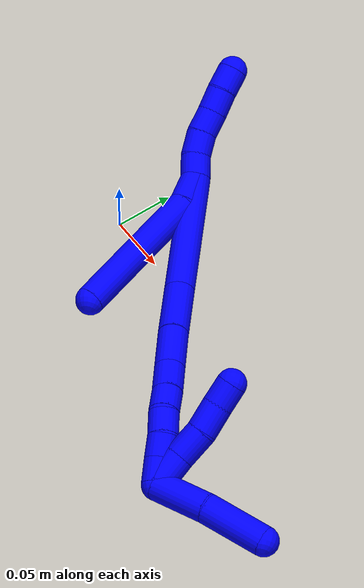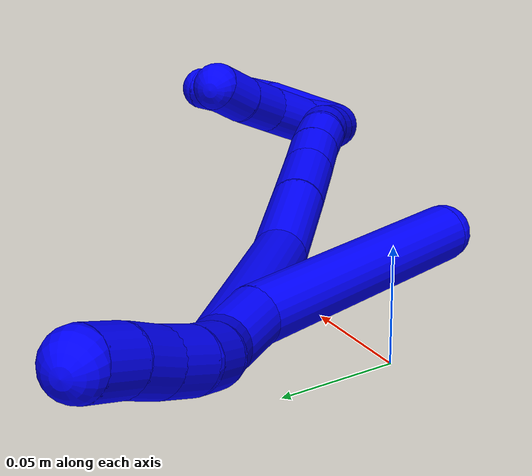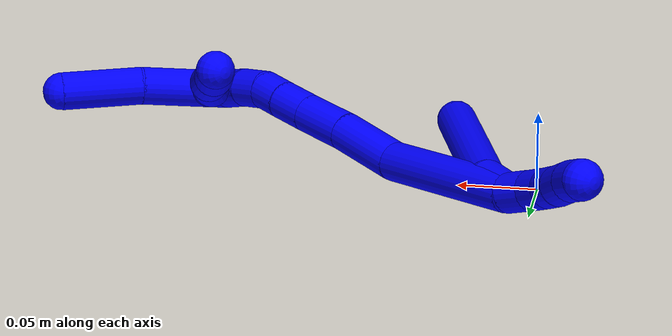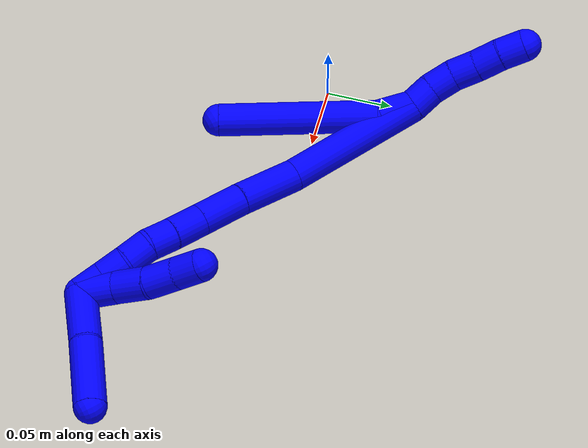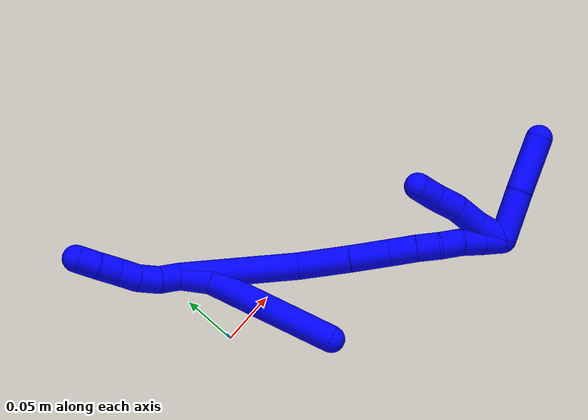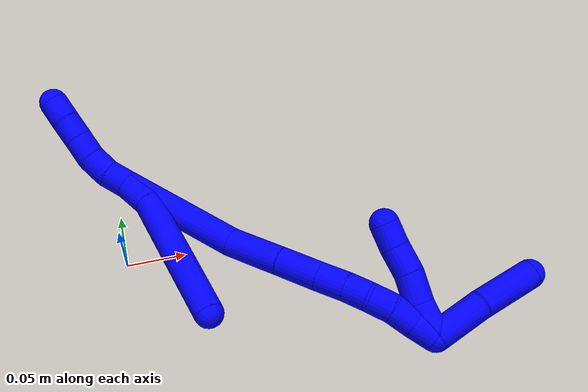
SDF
<sdf version="1.7">
 <world name="default">
  <model name="1">
   <static>0</static>
   <link name="1">
    <collision name="collision-cylinder-e_1_2_8">
     <pose>-0.002512 -0.000949 0.013928 0.06802 -0.178062 -0.006074</pose>
     <geometry><cylinder><radius>0.0125</radius><length>0.02837</length></cylinder></geometry>
     <surface>
      <friction><ode><mu>1.16</mu><mu2>1.16</mu2><slip1>0</slip1><slip2>0</slip2></ode></friction>
      <contact><ode><kp>1e+06</kp><kd>1</kd><max_vel>0</max_vel><min_depth>0.001</min_depth></ode></contact>
     </surface>
    </collision>
    <visual name="visual-cylinder-e_1_2_8">
     <pose>-0.002512 -0.000949 0.013928 0.06802 -0.178062 -0.006074</pose>
     <geometry><cylinder><radius>0.0125</radius><length>0.02837</length></cylinder></geometry>
     <material><ambient>0 0 1 1</ambient></material>
    </visual>
    <collision name="collision-cylinder-e_2_8_6">
     <pose>-0.025992 -0.02112 0.081609 0.343442 -0.351997 -0.061665</pose>
     <geometry><cylinder><radius>0.0125</radius><length>0.12163</length></cylinder></geometry>
     <surface>
      <friction><ode><mu>1.16</mu><mu2>1.16</mu2><slip1>0</slip1><slip2>0</slip2></ode></friction>
      <contact><ode><kp>1e+06</kp><kd>1</kd><max_vel>0</max_vel><min_depth>0.001</min_depth></ode></contact>
     </surface>
    </collision>
    <visual name="visual-cylinder-e_2_8_6">
     <pose>-0.025992 -0.02112 0.081609 0.343442 -0.351997 -0.061665</pose>
     <geometry><cylinder><radius>0.0125</radius><length>0.12163</length></cylinder></geometry>
     <material><ambient>0 0 1 1</ambient></material>
    </visual>
    <collision name="collision-cylinder-e_1_2_9">
     <pose>-0.002824 5.9e-05 -0.009593 -3.13548 -0.286278 3.09917</pose>
     <geometry><cylinder><radius>0.0125</radius><length>0.02</length></cylinder></geometry>
     <surface>
      <friction><ode><mu>1.16</mu><mu2>1.16</mu2><slip1>0</slip1><slip2>0</slip2></ode></friction>
      <contact><ode><kp>1e+06</kp><kd>1</kd><max_vel>0</max_vel><min_depth>0.001</min_depth></ode></contact>
     </surface>
    </collision>
    <visual name="visual-cylinder-e_1_2_9">
     <pose>-0.002824 5.9e-05 -0.009593 -3.13548 -0.286278 3.09917</pose>
     <geometry><cylinder><radius>0.0125</radius><length>0.02</length></cylinder></geometry>
     <material><ambient>0 0 1 1</ambient></material>
    </visual>
    <collision name="collision-cylinder-e_2_9_10">
     <pose>-0.007327 0.002316 -0.028795 -2.91671 -0.168717 1.28555</pose>
     <geometry><cylinder><radius>0.0125</radius><length>0.02</length></cylinder></geometry>
     <surface>
      <friction><ode><mu>1.16</mu><mu2>1.16</mu2><slip1>0</slip1><slip2>0</slip2></ode></friction>
      <contact><ode><kp>1e+06</kp><kd>1</kd><max_vel>0</max_vel><min_depth>0.001</min_depth></ode></contact>
     </surface>
    </collision>
    <visual name="visual-cylinder-e_2_9_10">
     <pose>-0.007327 0.002316 -0.028795 -2.91671 -0.168717 1.28555</pose>
     <geometry><cylinder><radius>0.0125</radius><length>0.02</length></cylinder></geometry>
     <material><ambient>0 0 1 1</ambient></material>
    </visual>
    <collision name="collision-cylinder-e_3_10_11">
     <pose>-0.009556 0.008513 -0.047554 -2.72955 -0.05506 0.262019</pose>
     <geometry><cylinder><radius>0.0125</radius><length>0.02</length></cylinder></geometry>
     <surface>
      <friction><ode><mu>1.16</mu><mu2>1.16</mu2><slip1>0</slip1><slip2>0</slip2></ode></friction>
      <contact><ode><kp>1e+06</kp><kd>1</kd><max_vel>0</max_vel><min_depth>0.001</min_depth></ode></contact>
     </surface>
    </collision>
    <visual name="visual-cylinder-e_3_10_11">
     <pose>-0.009556 0.008513 -0.047554 -2.72955 -0.05506 0.262019</pose>
     <geometry><cylinder><radius>0.0125</radius><length>0.02</length></cylinder></geometry>
     <material><ambient>0 0 1 1</ambient></material>
    </visual>
    <collision name="collision-cylinder-e_4_11_12">
     <pose>-0.011396 0.016627 -0.065726 -2.71366 -0.129245 0.578903</pose>
     <geometry><cylinder><radius>0.0125</radius><length>0.02</length></cylinder></geometry>
     <surface>
      <friction><ode><mu>1.16</mu><mu2>1.16</mu2><slip1>0</slip1><slip2>0</slip2></ode></friction>
      <contact><ode><kp>1e+06</kp><kd>1</kd><max_vel>0</max_vel><min_depth>0.001</min_depth></ode></contact>
     </surface>
    </collision>
    <visual name="visual-cylinder-e_4_11_12">
     <pose>-0.011396 0.016627 -0.065726 -2.71366 -0.129245 0.578903</pose>
     <geometry><cylinder><radius>0.0125</radius><length>0.02</length></cylinder></geometry>
     <material><ambient>0 0 1 1</ambient></material>
    </visual>
    <collision name="collision-cylinder-e_5_12_5">
     <pose>-0.012939 0.024651 -0.083949 -2.73987 -0.025508 0.125126</pose>
     <geometry><cylinder><radius>0.0125</radius><length>0.02</length></cylinder></geometry>
     <surface>
      <friction><ode><mu>1.16</mu><mu2>1.16</mu2><slip1>0</slip1><slip2>0</slip2></ode></friction>
      <contact><ode><kp>1e+06</kp><kd>1</kd><max_vel>0</max_vel><min_depth>0.001</min_depth></ode></contact>
     </surface>
    </collision>
    <visual name="visual-cylinder-e_5_12_5">
     <pose>-0.012939 0.024651 -0.083949 -2.73987 -0.025508 0.125126</pose>
     <geometry><cylinder><radius>0.0125</radius><length>0.02</length></cylinder></geometry>
     <material><ambient>0 0 1 1</ambient></material>
    </visual>
    <collision name="collision-cylinder-e_1_2_13">
     <pose>0.001729 0.003475 0.054068 -0.064181 0.031908 -0.001024</pose>
     <geometry><cylinder><radius>0.0125</radius><length>0.108414</length></cylinder></geometry>
     <surface>
      <friction><ode><mu>1.16</mu><mu2>1.16</mu2><slip1>0</slip1><slip2>0</slip2></ode></friction>
      <contact><ode><kp>1e+06</kp><kd>1</kd><max_vel>0</max_vel><min_depth>0.001</min_depth></ode></contact>
     </surface>
    </collision>
    <visual name="visual-cylinder-e_1_2_13">
     <pose>0.001729 0.003475 0.054068 -0.064181 0.031908 -0.001024</pose>
     <geometry><cylinder><radius>0.0125</radius><length>0.108414</length></cylinder></geometry>
     <material><ambient>0 0 1 1</ambient></material>
    </visual>
    <collision name="collision-cylinder-e_2_13_14">
     <pose>0.000237 0.012352 0.131601 -0.226297 -0.133019 0.015137</pose>
     <geometry><cylinder><radius>0.0125</radius><length>0.048587</length></cylinder></geometry>
     <surface>
      <friction><ode><mu>1.16</mu><mu2>1.16</mu2><slip1>0</slip1><slip2>0</slip2></ode></friction>
      <contact><ode><kp>1e+06</kp><kd>1</kd><max_vel>0</max_vel><min_depth>0.001</min_depth></ode></contact>
     </surface>
    </collision>
    <visual name="visual-cylinder-e_2_13_14">
     <pose>0.000237 0.012352 0.131601 -0.226297 -0.133019 0.015137</pose>
     <geometry><cylinder><radius>0.0125</radius><length>0.048587</length></cylinder></geometry>
     <material><ambient>0 0 1 1</ambient></material>
    </visual>
    <collision name="collision-cylinder-e_3_14_15">
     <pose>-0.00435 0.021521 0.172756 -0.209744 -0.075305 0.00793</pose>
     <geometry><cylinder><radius>0.0125</radius><length>0.036276</length></cylinder></geometry>
     <surface>
      <friction><ode><mu>1.16</mu><mu2>1.16</mu2><slip1>0</slip1><slip2>0</slip2></ode></friction>
      <contact><ode><kp>1e+06</kp><kd>1</kd><max_vel>0</max_vel><min_depth>0.001</min_depth></ode></contact>
     </surface>
    </collision>
    <visual name="visual-cylinder-e_3_14_15">
     <pose>-0.00435 0.021521 0.172756 -0.209744 -0.075305 0.00793</pose>
     <geometry><cylinder><radius>0.0125</radius><length>0.036276</length></cylinder></geometry>
     <material><ambient>0 0 1 1</ambient></material>
    </visual>
    <collision name="collision-cylinder-e_4_15_16">
     <pose>-0.006839 0.028119 0.202577 -0.22934 -0.090055 0.010379</pose>
     <geometry><cylinder><radius>0.0125</radius><length>0.025016</length></cylinder></geometry>
     <surface>
      <friction><ode><mu>1.16</mu><mu2>1.16</mu2><slip1>0</slip1><slip2>0</slip2></ode></friction>
      <contact><ode><kp>1e+06</kp><kd>1</kd><max_vel>0</max_vel><min_depth>0.001</min_depth></ode></contact>
     </surface>
    </collision>
    <visual name="visual-cylinder-e_4_15_16">
     <pose>-0.006839 0.028119 0.202577 -0.22934 -0.090055 0.010379</pose>
     <geometry><cylinder><radius>0.0125</radius><length>0.025016</length></cylinder></geometry>
     <material><ambient>0 0 1 1</ambient></material>
    </visual>
    <collision name="collision-cylinder-e_5_16_17">
     <pose>-0.009084 0.032701 0.224746 -0.172674 -0.109487 0.009486</pose>
     <geometry><cylinder><radius>0.0125</radius><length>0.020501</length></cylinder></geometry>
     <surface>
      <friction><ode><mu>1.16</mu><mu2>1.16</mu2><slip1>0</slip1><slip2>0</slip2></ode></friction>
      <contact><ode><kp>1e+06</kp><kd>1</kd><max_vel>0</max_vel><min_depth>0.001</min_depth></ode></contact>
     </surface>
    </collision>
    <visual name="visual-cylinder-e_5_16_17">
     <pose>-0.009084 0.032701 0.224746 -0.172674 -0.109487 0.009486</pose>
     <geometry><cylinder><radius>0.0125</radius><length>0.020501</length></cylinder></geometry>
     <material><ambient>0 0 1 1</ambient></material>
    </visual>
    <collision name="collision-cylinder-e_6_17_18">
     <pose>-0.008778 0.035378 0.244852 -0.091755 0.140124 -0.006444</pose>
     <geometry><cylinder><radius>0.0125</radius><length>0.020422</length></cylinder></geometry>
     <surface>
      <friction><ode><mu>1.16</mu><mu2>1.16</mu2><slip1>0</slip1><slip2>0</slip2></ode></friction>
      <contact><ode><kp>1e+06</kp><kd>1</kd><max_vel>0</max_vel><min_depth>0.001</min_depth></ode></contact>
     </surface>
    </collision>
    <visual name="visual-cylinder-e_6_17_18">
     <pose>-0.008778 0.035378 0.244852 -0.091755 0.140124 -0.006444</pose>
     <geometry><cylinder><radius>0.0125</radius><length>0.020422</length></cylinder></geometry>
     <material><ambient>0 0 1 1</ambient></material>
    </visual>
    <collision name="collision-cylinder-e_7_18_19">
     <pose>-0.005484 0.035498 0.264784 0.081568 0.186582 0.007636</pose>
     <geometry><cylinder><radius>0.0125</radius><length>0.020144</length></cylinder></geometry>
     <surface>
      <friction><ode><mu>1.16</mu><mu2>1.16</mu2><slip1>0</slip1><slip2>0</slip2></ode></friction>
      <contact><ode><kp>1e+06</kp><kd>1</kd><max_vel>0</max_vel><min_depth>0.001</min_depth></ode></contact>
     </surface>
    </collision>
    <visual name="visual-cylinder-e_7_18_19">
     <pose>-0.005484 0.035498 0.264784 0.081568 0.186582 0.007636</pose>
     <geometry><cylinder><radius>0.0125</radius><length>0.020144</length></cylinder></geometry>
     <material><ambient>0 0 1 1</ambient></material>
    </visual>
    <collision name="collision-cylinder-e_8_19_1">
     <pose>-0.00199 0.034451 0.284837 0.023638 0.158155 0.001873</pose>
     <geometry><cylinder><radius>0.0125</radius><length>0.020641</length></cylinder></geometry>
     <surface>
      <friction><ode><mu>1.16</mu><mu2>1.16</mu2><slip1>0</slip1><slip2>0</slip2></ode></friction>
      <contact><ode><kp>1e+06</kp><kd>1</kd><max_vel>0</max_vel><min_depth>0.001</min_depth></ode></contact>
     </surface>
    </collision>
    <visual name="visual-cylinder-e_8_19_1">
     <pose>-0.00199 0.034451 0.284837 0.023638 0.158155 0.001873</pose>
     <geometry><cylinder><radius>0.0125</radius><length>0.020641</length></cylinder></geometry>
     <material><ambient>0 0 1 1</ambient></material>
    </visual>
    <collision name="collision-cylinder-e_1_1_20">
     <pose>0.001244 0.041503 0.2827 -2.6073 0.111848 -0.403531</pose>
     <geometry><cylinder><radius>0.0125</radius><length>0.028822</length></cylinder></geometry>
     <surface>
      <friction><ode><mu>1.16</mu><mu2>1.16</mu2><slip1>0</slip1><slip2>0</slip2></ode></friction>
      <contact><ode><kp>1e+06</kp><kd>1</kd><max_vel>0</max_vel><min_depth>0.001</min_depth></ode></contact>
     </surface>
    </collision>
    <visual name="visual-cylinder-e_1_1_20">
     <pose>0.001244 0.041503 0.2827 -2.6073 0.111848 -0.403531</pose>
     <geometry><cylinder><radius>0.0125</radius><length>0.028822</length></cylinder></geometry>
     <material><ambient>0 0 1 1</ambient></material>
    </visual>
    <collision name="collision-cylinder-e_2_20_21">
     <pose>0.003622 0.057213 0.260296 -2.44581 0.058564 -0.161188</pose>
     <geometry><cylinder><radius>0.0125</radius><length>0.026307</length></cylinder></geometry>
     <surface>
      <friction><ode><mu>1.16</mu><mu2>1.16</mu2><slip1>0</slip1><slip2>0</slip2></ode></friction>
      <contact><ode><kp>1e+06</kp><kd>1</kd><max_vel>0</max_vel><min_depth>0.001</min_depth></ode></contact>
     </surface>
    </collision>
    <visual name="visual-cylinder-e_2_20_21">
     <pose>0.003622 0.057213 0.260296 -2.44581 0.058564 -0.161188</pose>
     <geometry><cylinder><radius>0.0125</radius><length>0.026307</length></cylinder></geometry>
     <material><ambient>0 0 1 1</ambient></material>
    </visual>
    <collision name="collision-cylinder-e_3_21_22">
     <pose>0.00388 0.071765 0.239746 -2.61155 -0.04221 0.155233</pose>
     <geometry><cylinder><radius>0.0125</radius><length>0.024295</length></cylinder></geometry>
     <surface>
      <friction><ode><mu>1.16</mu><mu2>1.16</mu2><slip1>0</slip1><slip2>0</slip2></ode></friction>
      <contact><ode><kp>1e+06</kp><kd>1</kd><max_vel>0</max_vel><min_depth>0.001</min_depth></ode></contact>
     </surface>
    </collision>
    <visual name="visual-cylinder-e_3_21_22">
     <pose>0.00388 0.071765 0.239746 -2.61155 -0.04221 0.155233</pose>
     <geometry><cylinder><radius>0.0125</radius><length>0.024295</length></cylinder></geometry>
     <material><ambient>0 0 1 1</ambient></material>
    </visual>
    <collision name="collision-cylinder-e_4_22_4">
     <pose>0.002517 0.083887 0.220951 -2.5182 -0.082686 0.255379</pose>
     <geometry><cylinder><radius>0.0125</radius><length>0.020576</length></cylinder></geometry>
     <surface>
      <friction><ode><mu>1.16</mu><mu2>1.16</mu2><slip1>0</slip1><slip2>0</slip2></ode></friction>
      <contact><ode><kp>1e+06</kp><kd>1</kd><max_vel>0</max_vel><min_depth>0.001</min_depth></ode></contact>
     </surface>
    </collision>
    <visual name="visual-cylinder-e_4_22_4">
     <pose>0.002517 0.083887 0.220951 -2.5182 -0.082686 0.255379</pose>
     <geometry><cylinder><radius>0.0125</radius><length>0.020576</length></cylinder></geometry>
     <material><ambient>0 0 1 1</ambient></material>
    </visual>
    <collision name="collision-cylinder-e_1_1_23">
     <pose>0.010447 0.053246 0.302977 -1.17512 0.482734 -0.325014</pose>
     <geometry><cylinder><radius>0.0125</radius><length>0.046582</length></cylinder></geometry>
     <surface>
      <friction><ode><mu>1.16</mu><mu2>1.16</mu2><slip1>0</slip1><slip2>0</slip2></ode></friction>
      <contact><ode><kp>1e+06</kp><kd>1</kd><max_vel>0</max_vel><min_depth>0.001</min_depth></ode></contact>
     </surface>
    </collision>
    <visual name="visual-cylinder-e_1_1_23">
     <pose>0.010447 0.053246 0.302977 -1.17512 0.482734 -0.325014</pose>
     <geometry><cylinder><radius>0.0125</radius><length>0.046582</length></cylinder></geometry>
     <material><ambient>0 0 1 1</ambient></material>
    </visual>
    <collision name="collision-cylinder-e_2_23_3">
     <pose>0.036099 0.092009 0.321125 -1.09372 0.589096 -0.365267</pose>
     <geometry><cylinder><radius>0.0125</radius><length>0.053418</length></cylinder></geometry>
     <surface>
      <friction><ode><mu>1.16</mu><mu2>1.16</mu2><slip1>0</slip1><slip2>0</slip2></ode></friction>
      <contact><ode><kp>1e+06</kp><kd>1</kd><max_vel>0</max_vel><min_depth>0.001</min_depth></ode></contact>
     </surface>
    </collision>
    <visual name="visual-cylinder-e_2_23_3">
     <pose>0.036099 0.092009 0.321125 -1.09372 0.589096 -0.365267</pose>
     <geometry><cylinder><radius>0.0125</radius><length>0.053418</length></cylinder></geometry>
     <material><ambient>0 0 1 1</ambient></material>
    </visual>
    <collision name="collision-sphere-3">
     <pose>0.050938 0.111736 0.331322 0 -0 0</pose>
     <geometry><sphere><radius>0.0125</radius></sphere></geometry>
     <surface>
      <friction><ode><mu>1.16</mu><mu2>1.16</mu2><slip1>0</slip1><slip2>0</slip2></ode></friction>
      <contact><ode><kp>1e+06</kp><kd>1</kd><max_vel>0</max_vel><min_depth>0.001</min_depth></ode></contact>
     </surface>
    </collision>
    <visual name="visual-sphere-3">
     <pose>0.050938 0.111736 0.331322 0 -0 0</pose>
     <geometry><sphere><radius>0.0125</radius></sphere></geometry>
     <material><ambient>0 0 1 1</ambient></material>
    </visual>
    <collision name="collision-sphere-23">
     <pose>0.021259 0.072282 0.310928 0 -0 0</pose>
     <geometry><sphere><radius>0.0125</radius></sphere></geometry>
     <surface>
      <friction><ode><mu>1.16</mu><mu2>1.16</mu2><slip1>0</slip1><slip2>0</slip2></ode></friction>
      <contact><ode><kp>1e+06</kp><kd>1</kd><max_vel>0</max_vel><min_depth>0.001</min_depth></ode></contact>
     </surface>
    </collision>
    <visual name="visual-sphere-23">
     <pose>0.021259 0.072282 0.310928 0 -0 0</pose>
     <geometry><sphere><radius>0.0125</radius></sphere></geometry>
     <material><ambient>0 0 1 1</ambient></material>
    </visual>
    <collision name="collision-sphere-4">
     <pose>0.001668 0.089872 0.212627 0 -0 0</pose>
     <geometry><sphere><radius>0.0125</radius></sphere></geometry>
     <surface>
      <friction><ode><mu>1.16</mu><mu2>1.16</mu2><slip1>0</slip1><slip2>0</slip2></ode></friction>
      <contact><ode><kp>1e+06</kp><kd>1</kd><max_vel>0</max_vel><min_depth>0.001</min_depth></ode></contact>
     </surface>
    </collision>
    <visual name="visual-sphere-4">
     <pose>0.001668 0.089872 0.212627 0 -0 0</pose>
     <geometry><sphere><radius>0.0125</radius></sphere></geometry>
     <material><ambient>0 0 1 1</ambient></material>
    </visual>
    <collision name="collision-sphere-22">
     <pose>0.003367 0.077901 0.229275 0 -0 0</pose>
     <geometry><sphere><radius>0.0125</radius></sphere></geometry>
     <surface>
      <friction><ode><mu>1.16</mu><mu2>1.16</mu2><slip1>0</slip1><slip2>0</slip2></ode></friction>
      <contact><ode><kp>1e+06</kp><kd>1</kd><max_vel>0</max_vel><min_depth>0.001</min_depth></ode></contact>
     </surface>
    </collision>
    <visual name="visual-sphere-22">
     <pose>0.003367 0.077901 0.229275 0 -0 0</pose>
     <geometry><sphere><radius>0.0125</radius></sphere></geometry>
     <material><ambient>0 0 1 1</ambient></material>
    </visual>
    <collision name="collision-sphere-21">
     <pose>0.004392 0.06563 0.250218 0 -0 0</pose>
     <geometry><sphere><radius>0.0125</radius></sphere></geometry>
     <surface>
      <friction><ode><mu>1.16</mu><mu2>1.16</mu2><slip1>0</slip1><slip2>0</slip2></ode></friction>
      <contact><ode><kp>1e+06</kp><kd>1</kd><max_vel>0</max_vel><min_depth>0.001</min_depth></ode></contact>
     </surface>
    </collision>
    <visual name="visual-sphere-21">
     <pose>0.004392 0.06563 0.250218 0 -0 0</pose>
     <geometry><sphere><radius>0.0125</radius></sphere></geometry>
     <material><ambient>0 0 1 1</ambient></material>
    </visual>
    <collision name="collision-sphere-20">
     <pose>0.002852 0.048796 0.270375 0 -0 0</pose>
     <geometry><sphere><radius>0.0125</radius></sphere></geometry>
     <surface>
      <friction><ode><mu>1.16</mu><mu2>1.16</mu2><slip1>0</slip1><slip2>0</slip2></ode></friction>
      <contact><ode><kp>1e+06</kp><kd>1</kd><max_vel>0</max_vel><min_depth>0.001</min_depth></ode></contact>
     </surface>
    </collision>
    <visual name="visual-sphere-20">
     <pose>0.002852 0.048796 0.270375 0 -0 0</pose>
     <geometry><sphere><radius>0.0125</radius></sphere></geometry>
     <material><ambient>0 0 1 1</ambient></material>
    </visual>
    <collision name="collision-sphere-11">
     <pose>-0.010107 0.012511 -0.056704 0 -0 0</pose>
     <geometry><sphere><radius>0.0125</radius></sphere></geometry>
     <surface>
      <friction><ode><mu>1.16</mu><mu2>1.16</mu2><slip1>0</slip1><slip2>0</slip2></ode></friction>
      <contact><ode><kp>1e+06</kp><kd>1</kd><max_vel>0</max_vel><min_depth>0.001</min_depth></ode></contact>
     </surface>
    </collision>
    <visual name="visual-sphere-11">
     <pose>-0.010107 0.012511 -0.056704 0 -0 0</pose>
     <geometry><sphere><radius>0.0125</radius></sphere></geometry>
     <material><ambient>0 0 1 1</ambient></material>
    </visual>
    <collision name="collision-sphere-10">
     <pose>-0.009006 0.004514 -0.038405 0 -0 0</pose>
     <geometry><sphere><radius>0.0125</radius></sphere></geometry>
     <surface>
      <friction><ode><mu>1.16</mu><mu2>1.16</mu2><slip1>0</slip1><slip2>0</slip2></ode></friction>
      <contact><ode><kp>1e+06</kp><kd>1</kd><max_vel>0</max_vel><min_depth>0.001</min_depth></ode></contact>
     </surface>
    </collision>
    <visual name="visual-sphere-10">
     <pose>-0.009006 0.004514 -0.038405 0 -0 0</pose>
     <geometry><sphere><radius>0.0125</radius></sphere></geometry>
     <material><ambient>0 0 1 1</ambient></material>
    </visual>
    <collision name="collision-sphere-6">
     <pose>-0.04696 -0.040343 0.135362 0 -0 0</pose>
     <geometry><sphere><radius>0.0125</radius></sphere></geometry>
     <surface>
      <friction><ode><mu>1.16</mu><mu2>1.16</mu2><slip1>0</slip1><slip2>0</slip2></ode></friction>
      <contact><ode><kp>1e+06</kp><kd>1</kd><max_vel>0</max_vel><min_depth>0.001</min_depth></ode></contact>
     </surface>
    </collision>
    <visual name="visual-sphere-6">
     <pose>-0.04696 -0.040343 0.135362 0 -0 0</pose>
     <geometry><sphere><radius>0.0125</radius></sphere></geometry>
     <material><ambient>0 0 1 1</ambient></material>
    </visual>
    <collision name="collision-sphere-9">
     <pose>-0.005648 0.000117 -0.019186 0 -0 0</pose>
     <geometry><sphere><radius>0.0125</radius></sphere></geometry>
     <surface>
      <friction><ode><mu>1.16</mu><mu2>1.16</mu2><slip1>0</slip1><slip2>0</slip2></ode></friction>
      <contact><ode><kp>1e+06</kp><kd>1</kd><max_vel>0</max_vel><min_depth>0.001</min_depth></ode></contact>
     </surface>
    </collision>
    <visual name="visual-sphere-9">
     <pose>-0.005648 0.000117 -0.019186 0 -0 0</pose>
     <geometry><sphere><radius>0.0125</radius></sphere></geometry>
     <material><ambient>0 0 1 1</ambient></material>
    </visual>
    <collision name="collision-sphere-2">
     <geometry><sphere><radius>0.0125</radius></sphere></geometry>
     <surface>
      <friction><ode><mu>1.16</mu><mu2>1.16</mu2><slip1>0</slip1><slip2>0</slip2></ode></friction>
      <contact><ode><kp>1e+06</kp><kd>1</kd><max_vel>0</max_vel><min_depth>0.001</min_depth></ode></contact>
     </surface>
    </collision>
    <visual name="visual-sphere-2">
     <geometry><sphere><radius>0.0125</radius></sphere></geometry>
     <material><ambient>0 0 1 1</ambient></material>
    </visual>
    <collision name="collision-sphere-19">
     <pose>-0.003616 0.034692 0.274648 0 -0 0</pose>
     <geometry><sphere><radius>0.0125</radius></sphere></geometry>
     <surface>
      <friction><ode><mu>1.16</mu><mu2>1.16</mu2><slip1>0</slip1><slip2>0</slip2></ode></friction>
      <contact><ode><kp>1e+06</kp><kd>1</kd><max_vel>0</max_vel><min_depth>0.001</min_depth></ode></contact>
     </surface>
    </collision>
    <visual name="visual-sphere-19">
     <pose>-0.003616 0.034692 0.274648 0 -0 0</pose>
     <geometry><sphere><radius>0.0125</radius></sphere></geometry>
     <material><ambient>0 0 1 1</ambient></material>
    </visual>
    <collision name="collision-sphere-8">
     <pose>-0.005025 -0.001898 0.027856 0 -0 0</pose>
     <geometry><sphere><radius>0.0125</radius></sphere></geometry>
     <surface>
      <friction><ode><mu>1.16</mu><mu2>1.16</mu2><slip1>0</slip1><slip2>0</slip2></ode></friction>
      <contact><ode><kp>1e+06</kp><kd>1</kd><max_vel>0</max_vel><min_depth>0.001</min_depth></ode></contact>
     </surface>
    </collision>
    <visual name="visual-sphere-8">
     <pose>-0.005025 -0.001898 0.027856 0 -0 0</pose>
     <geometry><sphere><radius>0.0125</radius></sphere></geometry>
     <material><ambient>0 0 1 1</ambient></material>
    </visual>
    <collision name="collision-sphere-12">
     <pose>-0.012684 0.020742 -0.074748 0 -0 0</pose>
     <geometry><sphere><radius>0.0125</radius></sphere></geometry>
     <surface>
      <friction><ode><mu>1.16</mu><mu2>1.16</mu2><slip1>0</slip1><slip2>0</slip2></ode></friction>
      <contact><ode><kp>1e+06</kp><kd>1</kd><max_vel>0</max_vel><min_depth>0.001</min_depth></ode></contact>
     </surface>
    </collision>
    <visual name="visual-sphere-12">
     <pose>-0.012684 0.020742 -0.074748 0 -0 0</pose>
     <geometry><sphere><radius>0.0125</radius></sphere></geometry>
     <material><ambient>0 0 1 1</ambient></material>
    </visual>
    <collision name="collision-sphere-5">
     <pose>-0.013194 0.028559 -0.09315 0 -0 0</pose>
     <geometry><sphere><radius>0.0125</radius></sphere></geometry>
     <surface>
      <friction><ode><mu>1.16</mu><mu2>1.16</mu2><slip1>0</slip1><slip2>0</slip2></ode></friction>
      <contact><ode><kp>1e+06</kp><kd>1</kd><max_vel>0</max_vel><min_depth>0.001</min_depth></ode></contact>
     </surface>
    </collision>
    <visual name="visual-sphere-5">
     <pose>-0.013194 0.028559 -0.09315 0 -0 0</pose>
     <geometry><sphere><radius>0.0125</radius></sphere></geometry>
     <material><ambient>0 0 1 1</ambient></material>
    </visual>
    <collision name="collision-sphere-13">
     <pose>0.003459 0.00695 0.108136 0 -0 0</pose>
     <geometry><sphere><radius>0.0125</radius></sphere></geometry>
     <surface>
      <friction><ode><mu>1.16</mu><mu2>1.16</mu2><slip1>0</slip1><slip2>0</slip2></ode></friction>
      <contact><ode><kp>1e+06</kp><kd>1</kd><max_vel>0</max_vel><min_depth>0.001</min_depth></ode></contact>
     </surface>
    </collision>
    <visual name="visual-sphere-13">
     <pose>0.003459 0.00695 0.108136 0 -0 0</pose>
     <geometry><sphere><radius>0.0125</radius></sphere></geometry>
     <material><ambient>0 0 1 1</ambient></material>
    </visual>
    <collision name="collision-sphere-14">
     <pose>-0.002985 0.017755 0.155065 0 -0 0</pose>
     <geometry><sphere><radius>0.0125</radius></sphere></geometry>
     <surface>
      <friction><ode><mu>1.16</mu><mu2>1.16</mu2><slip1>0</slip1><slip2>0</slip2></ode></friction>
      <contact><ode><kp>1e+06</kp><kd>1</kd><max_vel>0</max_vel><min_depth>0.001</min_depth></ode></contact>
     </surface>
    </collision>
    <visual name="visual-sphere-14">
     <pose>-0.002985 0.017755 0.155065 0 -0 0</pose>
     <geometry><sphere><radius>0.0125</radius></sphere></geometry>
     <material><ambient>0 0 1 1</ambient></material>
    </visual>
    <collision name="collision-sphere-15">
     <pose>-0.005714 0.025287 0.190446 0 -0 0</pose>
     <geometry><sphere><radius>0.0125</radius></sphere></geometry>
     <surface>
      <friction><ode><mu>1.16</mu><mu2>1.16</mu2><slip1>0</slip1><slip2>0</slip2></ode></friction>
      <contact><ode><kp>1e+06</kp><kd>1</kd><max_vel>0</max_vel><min_depth>0.001</min_depth></ode></contact>
     </surface>
    </collision>
    <visual name="visual-sphere-15">
     <pose>-0.005714 0.025287 0.190446 0 -0 0</pose>
     <geometry><sphere><radius>0.0125</radius></sphere></geometry>
     <material><ambient>0 0 1 1</ambient></material>
    </visual>
    <collision name="collision-sphere-16">
     <pose>-0.007964 0.030951 0.214708 0 -0 0</pose>
     <geometry><sphere><radius>0.0125</radius></sphere></geometry>
     <surface>
      <friction><ode><mu>1.16</mu><mu2>1.16</mu2><slip1>0</slip1><slip2>0</slip2></ode></friction>
      <contact><ode><kp>1e+06</kp><kd>1</kd><max_vel>0</max_vel><min_depth>0.001</min_depth></ode></contact>
     </surface>
    </collision>
    <visual name="visual-sphere-16">
     <pose>-0.007964 0.030951 0.214708 0 -0 0</pose>
     <geometry><sphere><radius>0.0125</radius></sphere></geometry>
     <material><ambient>0 0 1 1</ambient></material>
    </visual>
    <collision name="collision-sphere-17">
     <pose>-0.010204 0.034452 0.234784 0 -0 0</pose>
     <geometry><sphere><radius>0.0125</radius></sphere></geometry>
     <surface>
      <friction><ode><mu>1.16</mu><mu2>1.16</mu2><slip1>0</slip1><slip2>0</slip2></ode></friction>
      <contact><ode><kp>1e+06</kp><kd>1</kd><max_vel>0</max_vel><min_depth>0.001</min_depth></ode></contact>
     </surface>
    </collision>
    <visual name="visual-sphere-17">
     <pose>-0.010204 0.034452 0.234784 0 -0 0</pose>
     <geometry><sphere><radius>0.0125</radius></sphere></geometry>
     <material><ambient>0 0 1 1</ambient></material>
    </visual>
    <collision name="collision-sphere-18">
     <pose>-0.007352 0.036305 0.25492 0 -0 0</pose>
     <geometry><sphere><radius>0.0125</radius></sphere></geometry>
     <surface>
      <friction><ode><mu>1.16</mu><mu2>1.16</mu2><slip1>0</slip1><slip2>0</slip2></ode></friction>
      <contact><ode><kp>1e+06</kp><kd>1</kd><max_vel>0</max_vel><min_depth>0.001</min_depth></ode></contact>
     </surface>
    </collision>
    <visual name="visual-sphere-18">
     <pose>-0.007352 0.036305 0.25492 0 -0 0</pose>
     <geometry><sphere><radius>0.0125</radius></sphere></geometry>
     <material><ambient>0 0 1 1</ambient></material>
    </visual>
    <collision name="collision-sphere-1">
     <pose>-0.000365 0.03421 0.295026 0 -0 0</pose>
     <geometry><sphere><radius>0.0125</radius></sphere></geometry>
     <surface>
      <friction><ode><mu>1.16</mu><mu2>1.16</mu2><slip1>0</slip1><slip2>0</slip2></ode></friction>
      <contact><ode><kp>1e+06</kp><kd>1</kd><max_vel>0</max_vel><min_depth>0.001</min_depth></ode></contact>
     </surface>
    </collision>
    <visual name="visual-sphere-1">
     <pose>-0.000365 0.03421 0.295026 0 -0 0</pose>
     <geometry><sphere><radius>0.0125</radius></sphere></geometry>
     <material><ambient>0 0 1 1</ambient></material>
    </visual>
    <inertial>
     <pose>-0.002758 0.023058 0.142205 0 -0 0</pose>
     <mass>0.75</mass>
     <inertia>
      <ixx>0.000301</ixx>
      <ixy>0</ixy>
      <ixz>0</ixz>
      <iyy>0.000286</iyy>
      <iyz>0</iyz>
      <izz>7.3e-05</izz>
     </inertia>
    </inertial>
   </link>
   <pose>0.011144 0.069614 0.022107 1.74012 0.885482 0.88344</pose>
  </model>
 </world>
</sdf>
